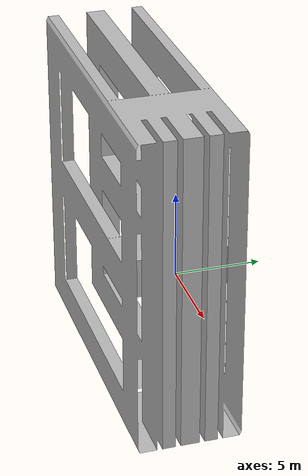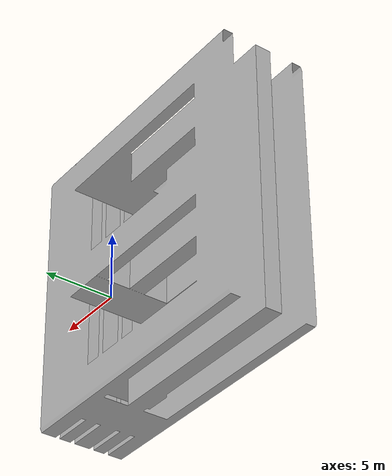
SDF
<?xml version="1.0" ?>
<sdf version="1.4">
	<model name="pallet_benchmark">
		<static>true</static>
		<link name="link">
			<pose>0 0 0.06 0 0 -1.5708</pose>
			<collision name="collision">
				<geometry>
					<mesh>
						<uri>model://pallet_benchmark/mesh/pallet.dae</uri>
						<scale>0.787 13.50 1.6197</scale>
					</mesh>
				</geometry>

			</collision>
			<visual name="visual">
				<geometry>
					<mesh>
						<uri>model://pallet_benchmark/mesh/pallet.dae</uri>
						<scale>0.787 13.50 1.6197</scale>
					</mesh>
				</geometry>
			</visual>
		</link>
	</model>
</sdf>
